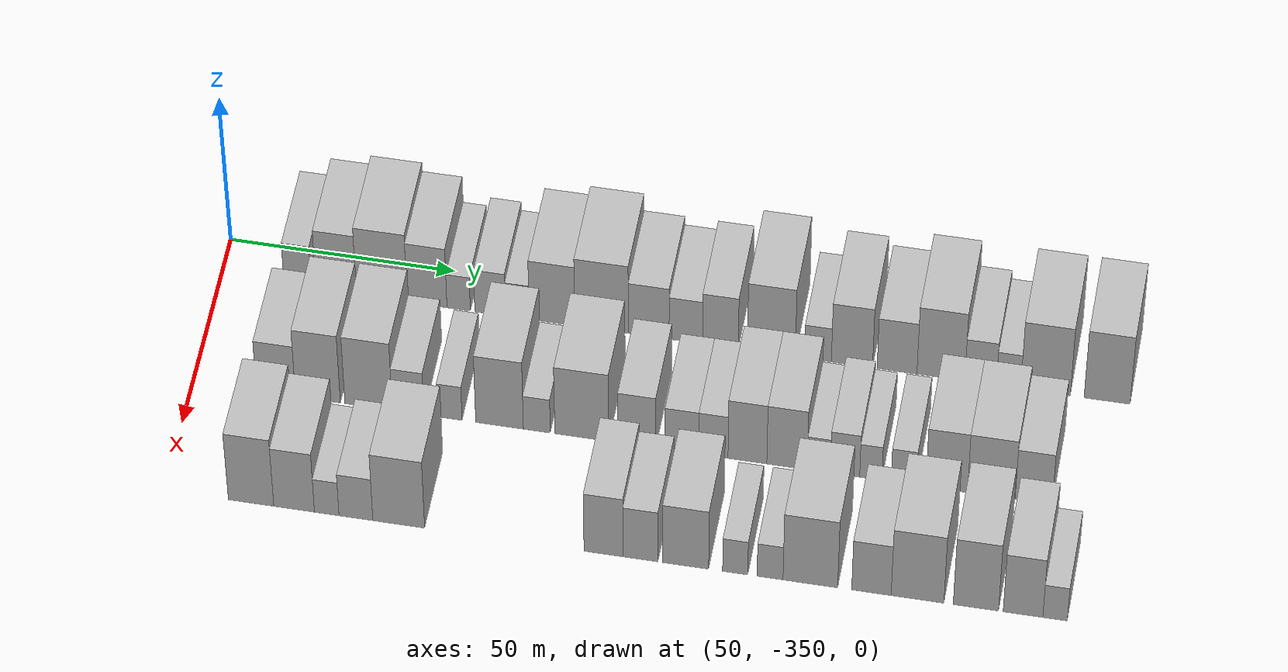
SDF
<sdf version="1.6">
 <world name="default">
  <model name="building_1">
   <static>1</static>
   <pose>50.0000 -332.9522 0 0.000000 0.000000 0.000000</pose>
   <link name="link">
    <pose>0 0 7.50 0 0 0</pose>
    <collision name="collision"><geometry><box><size>20.0000 6.0955 15.0000</size></box></geometry></collision>
    <visual name="visual">
     <cast_shadows>0</cast_shadows>
     <geometry><box><size>20.0000 6.0955 15.0000</size></box></geometry>
     <material>
      <script>
       <uri>model://HANNAS_wall/materials/scripts</uri>
       <uri>model://HANNAS_wall/materials/textures</uri>
       <name>vrc/HANNAS_wall</name>
      </script>
     </material>
    </visual>
   </link>
  </model>
  <model name="building_2">
   <static>1</static>
   <pose>50.0000 -324.4154 0 0.000000 0.000000 0.000000</pose>
   <link name="link">
    <pose>0 0 10.50 0 0 0</pose>
    <collision name="collision"><geometry><box><size>20.0000 8.9783 21.0000</size></box></geometry></collision>
    <visual name="visual">
     <cast_shadows>0</cast_shadows>
     <geometry><box><size>20.0000 8.9783 21.0000</size></box></geometry>
     <material>
      <script>
       <uri>model://HANNAS_wall/materials/scripts</uri>
       <uri>model://HANNAS_wall/materials/textures</uri>
       <name>vrc/HANNAS_wall</name>
      </script>
     </material>
    </visual>
   </link>
  </model>
  <model name="building_3">
   <static>1</static>
   <pose>50.0000 -314.2920 0 0.000000 0.000000 0.000000</pose>
   <link name="link">
    <pose>0 0 12.00 0 0 0</pose>
    <collision name="collision"><geometry><box><size>20.0000 11.2685 24.0000</size></box></geometry></collision>
    <visual name="visual">
     <cast_shadows>0</cast_shadows>
     <geometry><box><size>20.0000 11.2685 24.0000</size></box></geometry>
     <material>
      <script>
       <uri>model://HANNAS_wall/materials/scripts</uri>
       <uri>model://HANNAS_wall/materials/textures</uri>
       <name>vrc/HANNAS_wall</name>
      </script>
     </material>
    </visual>
   </link>
  </model>
  <model name="building_4">
   <static>1</static>
   <pose>50.0000 -304.2534 0 0.000000 0.000000 0.000000</pose>
   <link name="link">
    <pose>0 0 10.50 0 0 0</pose>
    <collision name="collision"><geometry><box><size>20.0000 8.8086 21.0000</size></box></geometry></collision>
    <visual name="visual">
     <cast_shadows>0</cast_shadows>
     <geometry><box><size>20.0000 8.8086 21.0000</size></box></geometry>
     <material>
      <script>
       <uri>model://HANNAS_wall/materials/scripts</uri>
       <uri>model://HANNAS_wall/materials/textures</uri>
       <name>vrc/HANNAS_wall</name>
      </script>
     </material>
    </visual>
   </link>
  </model>
  <model name="building_5">
   <static>1</static>
   <pose>50.0000 -297.2645 0 0.000000 0.000000 0.000000</pose>
   <link name="link">
    <pose>0 0 6.00 0 0 0</pose>
    <collision name="collision"><geometry><box><size>20.0000 5.1691 12.0000</size></box></geometry></collision>
    <visual name="visual">
     <cast_shadows>0</cast_shadows>
     <geometry><box><size>20.0000 5.1691 12.0000</size></box></geometry>
     <material>
      <script>
       <uri>model://HANNAS_wall/materials/scripts</uri>
       <uri>model://HANNAS_wall/materials/textures</uri>
       <name>vrc/HANNAS_wall</name>
      </script>
     </material>
    </visual>
   </link>
  </model>
  <model name="building_6">
   <static>1</static>
   <pose>50.0000 -290.2907 0 0.000000 0.000000 0.000000</pose>
   <link name="link">
    <pose>0 0 7.50 0 0 0</pose>
    <collision name="collision"><geometry><box><size>20.0000 6.7785 15.0000</size></box></geometry></collision>
    <visual name="visual">
     <cast_shadows>0</cast_shadows>
     <geometry><box><size>20.0000 6.7785 15.0000</size></box></geometry>
     <material>
      <script>
       <uri>model://HANNAS_wall/materials/scripts</uri>
       <uri>model://HANNAS_wall/materials/textures</uri>
       <name>vrc/HANNAS_wall</name>
      </script>
     </material>
    </visual>
   </link>
  </model>
  <model name="building_7">
   <static>1</static>
   <pose>50.0000 -284.2733 0 0.000000 0.000000 0.000000</pose>
   <link name="link">
    <pose>0 0 6.00 0 0 0</pose>
    <collision name="collision"><geometry><box><size>20.0000 5.2564 12.0000</size></box></geometry></collision>
    <visual name="visual">
     <cast_shadows>0</cast_shadows>
     <geometry><box><size>20.0000 5.2564 12.0000</size></box></geometry>
     <material>
      <script>
       <uri>model://HANNAS_wall/materials/scripts</uri>
       <uri>model://HANNAS_wall/materials/textures</uri>
       <name>vrc/HANNAS_wall</name>
      </script>
     </material>
    </visual>
   </link>
  </model>
  <model name="building_8">
   <static>1</static>
   <pose>50.0000 -276.6184 0 0.000000 0.000000 0.000000</pose>
   <link name="link">
    <pose>0 0 10.50 0 0 0</pose>
    <collision name="collision"><geometry><box><size>20.0000 10.0532 21.0000</size></box></geometry></collision>
    <visual name="visual">
     <cast_shadows>0</cast_shadows>
     <geometry><box><size>20.0000 10.0532 21.0000</size></box></geometry>
     <material>
      <script>
       <uri>model://HANNAS_wall/materials/scripts</uri>
       <uri>model://HANNAS_wall/materials/textures</uri>
       <name>vrc/HANNAS_wall</name>
      </script>
     </material>
    </visual>
   </link>
  </model>
  <model name="building_9">
   <static>1</static>
   <pose>50.0000 -265.6870 0 0.000000 0.000000 0.000000</pose>
   <link name="link">
    <pose>0 0 12.00 0 0 0</pose>
    <collision name="collision"><geometry><box><size>20.0000 11.8096 24.0000</size></box></geometry></collision>
    <visual name="visual">
     <cast_shadows>0</cast_shadows>
     <geometry><box><size>20.0000 11.8096 24.0000</size></box></geometry>
     <material>
      <script>
       <uri>model://HANNAS_wall/materials/scripts</uri>
       <uri>model://HANNAS_wall/materials/textures</uri>
       <name>vrc/HANNAS_wall</name>
      </script>
     </material>
    </visual>
   </link>
  </model>
  <model name="building_10">
   <static>1</static>
   <pose>50.0000 -255.3043 0 0.000000 0.000000 0.000000</pose>
   <link name="link">
    <pose>0 0 9.00 0 0 0</pose>
    <collision name="collision"><geometry><box><size>20.0000 8.9559 18.0000</size></box></geometry></collision>
    <visual name="visual">
     <cast_shadows>0</cast_shadows>
     <geometry><box><size>20.0000 8.9559 18.0000</size></box></geometry>
     <material>
      <script>
       <uri>model://HANNAS_wall/materials/scripts</uri>
       <uri>model://HANNAS_wall/materials/textures</uri>
       <name>vrc/HANNAS_wall</name>
      </script>
     </material>
    </visual>
   </link>
  </model>
  <model name="building_11">
   <static>1</static>
   <pose>50.0000 -247.1612 0 0.000000 0.000000 0.000000</pose>
   <link name="link">
    <pose>0 0 7.50 0 0 0</pose>
    <collision name="collision"><geometry><box><size>20.0000 7.3303 15.0000</size></box></geometry></collision>
    <visual name="visual">
     <cast_shadows>0</cast_shadows>
     <geometry><box><size>20.0000 7.3303 15.0000</size></box></geometry>
     <material>
      <script>
       <uri>model://HANNAS_wall/materials/scripts</uri>
       <uri>model://HANNAS_wall/materials/textures</uri>
       <name>vrc/HANNAS_wall</name>
      </script>
     </material>
    </visual>
   </link>
  </model>
  <model name="building_12">
   <static>1</static>
   <pose>50.0000 -239.5598 0 0.000000 0.000000 0.000000</pose>
   <link name="link">
    <pose>0 0 9.00 0 0 0</pose>
    <collision name="collision"><geometry><box><size>20.0000 7.8724 18.0000</size></box></geometry></collision>
    <visual name="visual">
     <cast_shadows>0</cast_shadows>
     <geometry><box><size>20.0000 7.8724 18.0000</size></box></geometry>
     <material>
      <script>
       <uri>model://HANNAS_wall/materials/scripts</uri>
       <uri>model://HANNAS_wall/materials/textures</uri>
       <name>vrc/HANNAS_wall</name>
      </script>
     </material>
    </visual>
   </link>
  </model>
  <model name="building_13">
   <static>1</static>
   <pose>50.0000 -228.3800 0 0.000000 0.000000 0.000000</pose>
   <link name="link">
    <pose>0 0 12.00 0 0 0</pose>
    <collision name="collision"><geometry><box><size>20.0000 10.4870 24.0000</size></box></geometry></collision>
    <visual name="visual">
     <cast_shadows>0</cast_shadows>
     <geometry><box><size>20.0000 10.4870 24.0000</size></box></geometry>
     <material>
      <script>
       <uri>model://HANNAS_wall/materials/scripts</uri>
       <uri>model://HANNAS_wall/materials/textures</uri>
       <name>vrc/HANNAS_wall</name>
      </script>
     </material>
    </visual>
   </link>
  </model>
  <model name="building_14">
   <static>1</static>
   <pose>50.0000 -218.1884 0 0.000000 0.000000 0.000000</pose>
   <link name="link">
    <pose>0 0 6.00 0 0 0</pose>
    <collision name="collision"><geometry><box><size>20.0000 5.8963 12.0000</size></box></geometry></collision>
    <visual name="visual">
     <cast_shadows>0</cast_shadows>
     <geometry><box><size>20.0000 5.8963 12.0000</size></box></geometry>
     <material>
      <script>
       <uri>model://HANNAS_wall/materials/scripts</uri>
       <uri>model://HANNAS_wall/materials/textures</uri>
       <name>vrc/HANNAS_wall</name>
      </script>
     </material>
    </visual>
   </link>
  </model>
  <model name="building_15">
   <static>1</static>
   <pose>50.0000 -210.7343 0 0.000000 0.000000 0.000000</pose>
   <link name="link">
    <pose>0 0 10.50 0 0 0</pose>
    <collision name="collision"><geometry><box><size>20.0000 9.0119 21.0000</size></box></geometry></collision>
    <visual name="visual">
     <cast_shadows>0</cast_shadows>
     <geometry><box><size>20.0000 9.0119 21.0000</size></box></geometry>
     <material>
      <script>
       <uri>model://HANNAS_wall/materials/scripts</uri>
       <uri>model://HANNAS_wall/materials/textures</uri>
       <name>vrc/HANNAS_wall</name>
      </script>
     </material>
    </visual>
   </link>
  </model>
  <model name="building_16">
   <static>1</static>
   <pose>50.0000 -200.8816 0 0.000000 0.000000 0.000000</pose>
   <link name="link">
    <pose>0 0 9.00 0 0 0</pose>
    <collision name="collision"><geometry><box><size>20.0000 8.6935 18.0000</size></box></geometry></collision>
    <visual name="visual">
     <cast_shadows>0</cast_shadows>
     <geometry><box><size>20.0000 8.6935 18.0000</size></box></geometry>
     <material>
      <script>
       <uri>model://HANNAS_wall/materials/scripts</uri>
       <uri>model://HANNAS_wall/materials/textures</uri>
       <name>vrc/HANNAS_wall</name>
      </script>
     </material>
    </visual>
   </link>
  </model>
  <model name="building_17">
   <static>1</static>
   <pose>50.0000 -191.3085 0 0.000000 0.000000 0.000000</pose>
   <link name="link">
    <pose>0 0 12.00 0 0 0</pose>
    <collision name="collision"><geometry><box><size>20.0000 10.4528 24.0000</size></box></geometry></collision>
    <visual name="visual">
     <cast_shadows>0</cast_shadows>
     <geometry><box><size>20.0000 10.4528 24.0000</size></box></geometry>
     <material>
      <script>
       <uri>model://HANNAS_wall/materials/scripts</uri>
       <uri>model://HANNAS_wall/materials/textures</uri>
       <name>vrc/HANNAS_wall</name>
      </script>
     </material>
    </visual>
   </link>
  </model>
  <model name="building_18">
   <static>1</static>
   <pose>50.0000 -182.6377 0 0.000000 0.000000 0.000000</pose>
   <link name="link">
    <pose>0 0 7.50 0 0 0</pose>
    <collision name="collision"><geometry><box><size>20.0000 6.8887 15.0000</size></box></geometry></collision>
    <visual name="visual">
     <cast_shadows>0</cast_shadows>
     <geometry><box><size>20.0000 6.8887 15.0000</size></box></geometry>
     <material>
      <script>
       <uri>model://HANNAS_wall/materials/scripts</uri>
       <uri>model://HANNAS_wall/materials/textures</uri>
       <name>vrc/HANNAS_wall</name>
      </script>
     </material>
    </visual>
   </link>
  </model>
  <model name="building_19">
   <static>1</static>
   <pose>50.0000 -176.5488 0 0.000000 0.000000 0.000000</pose>
   <link name="link">
    <pose>0 0 6.00 0 0 0</pose>
    <collision name="collision"><geometry><box><size>20.0000 5.2893 12.0000</size></box></geometry></collision>
    <visual name="visual">
     <cast_shadows>0</cast_shadows>
     <geometry><box><size>20.0000 5.2893 12.0000</size></box></geometry>
     <material>
      <script>
       <uri>model://HANNAS_wall/materials/scripts</uri>
       <uri>model://HANNAS_wall/materials/textures</uri>
       <name>vrc/HANNAS_wall</name>
      </script>
     </material>
    </visual>
   </link>
  </model>
  <model name="building_20">
   <static>1</static>
   <pose>50.0000 -168.5159 0 0.000000 0.000000 0.000000</pose>
   <link name="link">
    <pose>0 0 12.00 0 0 0</pose>
    <collision name="collision"><geometry><box><size>20.0000 10.7764 24.0000</size></box></geometry></collision>
    <visual name="visual">
     <cast_shadows>0</cast_shadows>
     <geometry><box><size>20.0000 10.7764 24.0000</size></box></geometry>
     <material>
      <script>
       <uri>model://HANNAS_wall/materials/scripts</uri>
       <uri>model://HANNAS_wall/materials/textures</uri>
       <name>vrc/HANNAS_wall</name>
      </script>
     </material>
    </visual>
   </link>
  </model>
  <model name="building_21">
   <static>1</static>
   <pose>50.0000 -155.1342 0 0.000000 0.000000 0.000000</pose>
   <link name="link">
    <pose>0 0 12.00 0 0 0</pose>
    <collision name="collision"><geometry><box><size>20.0000 9.9871 24.0000</size></box></geometry></collision>
    <visual name="visual">
     <cast_shadows>0</cast_shadows>
     <geometry><box><size>20.0000 9.9871 24.0000</size></box></geometry>
     <material>
      <script>
       <uri>model://HANNAS_wall/materials/scripts</uri>
       <uri>model://HANNAS_wall/materials/textures</uri>
       <name>vrc/HANNAS_wall</name>
      </script>
     </material>
    </visual>
   </link>
  </model>
  <model name="building_78">
   <static>1</static>
   <pose>79.0000 -331.7164 0 0.000000 0.000000 0.000000</pose>
   <link name="link">
    <pose>0 0 9.00 0 0 0</pose>
    <collision name="collision"><geometry><box><size>20.0000 8.5672 18.0000</size></box></geometry></collision>
    <visual name="visual">
     <cast_shadows>0</cast_shadows>
     <geometry><box><size>20.0000 8.5672 18.0000</size></box></geometry>
     <material>
      <script>
       <uri>model://HANNAS_wall/materials/scripts</uri>
       <uri>model://HANNAS_wall/materials/textures</uri>
       <name>vrc/HANNAS_wall</name>
      </script>
     </material>
    </visual>
   </link>
  </model>
  <model name="building_79">
   <static>1</static>
   <pose>79.0000 -322.5121 0 0.000000 0.000000 0.000000</pose>
   <link name="link">
    <pose>0 0 12.00 0 0 0</pose>
    <collision name="collision"><geometry><box><size>20.0000 9.8414 24.0000</size></box></geometry></collision>
    <visual name="visual">
     <cast_shadows>0</cast_shadows>
     <geometry><box><size>20.0000 9.8414 24.0000</size></box></geometry>
     <material>
      <script>
       <uri>model://HANNAS_wall/materials/scripts</uri>
       <uri>model://HANNAS_wall/materials/textures</uri>
       <name>vrc/HANNAS_wall</name>
      </script>
     </material>
    </visual>
   </link>
  </model>
  <model name="building_80">
   <static>1</static>
   <pose>79.0000 -311.3957 0 0.000000 0.000000 0.000000</pose>
   <link name="link">
    <pose>0 0 12.00 0 0 0</pose>
    <collision name="collision"><geometry><box><size>20.0000 10.3913 24.0000</size></box></geometry></collision>
    <visual name="visual">
     <cast_shadows>0</cast_shadows>
     <geometry><box><size>20.0000 10.3913 24.0000</size></box></geometry>
     <material>
      <script>
       <uri>model://HANNAS_wall/materials/scripts</uri>
       <uri>model://HANNAS_wall/materials/textures</uri>
       <name>vrc/HANNAS_wall</name>
      </script>
     </material>
    </visual>
   </link>
  </model>
  <model name="building_81">
   <static>1</static>
   <pose>79.0000 -302.7373 0 0.000000 0.000000 0.000000</pose>
   <link name="link">
    <pose>0 0 7.50 0 0 0</pose>
    <collision name="collision"><geometry><box><size>20.0000 6.9254 15.0000</size></box></geometry></collision>
    <visual name="visual">
     <cast_shadows>0</cast_shadows>
     <geometry><box><size>20.0000 6.9254 15.0000</size></box></geometry>
     <material>
      <script>
       <uri>model://HANNAS_wall/materials/scripts</uri>
       <uri>model://HANNAS_wall/materials/textures</uri>
       <name>vrc/HANNAS_wall</name>
      </script>
     </material>
    </visual>
   </link>
  </model>
  <model name="building_82">
   <static>1</static>
   <pose>79.0000 -293.6001 0 0.000000 0.000000 0.000000</pose>
   <link name="link">
    <pose>0 0 6.00 0 0 0</pose>
    <collision name="collision"><geometry><box><size>20.0000 5.3490 12.0000</size></box></geometry></collision>
    <visual name="visual">
     <cast_shadows>0</cast_shadows>
     <geometry><box><size>20.0000 5.3490 12.0000</size></box></geometry>
     <material>
      <script>
       <uri>model://HANNAS_wall/materials/scripts</uri>
       <uri>model://HANNAS_wall/materials/textures</uri>
       <name>vrc/HANNAS_wall</name>
      </script>
     </material>
    </visual>
   </link>
  </model>
  <model name="building_83">
   <static>1</static>
   <pose>79.0000 -282.7220 0 0.000000 0.000000 0.000000</pose>
   <link name="link">
    <pose>0 0 12.00 0 0 0</pose>
    <collision name="collision"><geometry><box><size>20.0000 10.4072 24.0000</size></box></geometry></collision>
    <visual name="visual">
     <cast_shadows>0</cast_shadows>
     <geometry><box><size>20.0000 10.4072 24.0000</size></box></geometry>
     <material>
      <script>
       <uri>model://HANNAS_wall/materials/scripts</uri>
       <uri>model://HANNAS_wall/materials/textures</uri>
       <name>vrc/HANNAS_wall</name>
      </script>
     </material>
    </visual>
   </link>
  </model>
  <model name="building_84">
   <static>1</static>
   <pose>79.0000 -274.5836 0 0.000000 0.000000 0.000000</pose>
   <link name="link">
    <pose>0 0 6.00 0 0 0</pose>
    <collision name="collision"><geometry><box><size>20.0000 5.8697 12.0000</size></box></geometry></collision>
    <visual name="visual">
     <cast_shadows>0</cast_shadows>
     <geometry><box><size>20.0000 5.8697 12.0000</size></box></geometry>
     <material>
      <script>
       <uri>model://HANNAS_wall/materials/scripts</uri>
       <uri>model://HANNAS_wall/materials/textures</uri>
       <name>vrc/HANNAS_wall</name>
      </script>
     </material>
    </visual>
   </link>
  </model>
  <model name="building_85">
   <static>1</static>
   <pose>79.0000 -264.7724 0 0.000000 0.000000 0.000000</pose>
   <link name="link">
    <pose>0 0 12.00 0 0 0</pose>
    <collision name="collision"><geometry><box><size>20.0000 11.7528 24.0000</size></box></geometry></collision>
    <visual name="visual">
     <cast_shadows>0</cast_shadows>
     <geometry><box><size>20.0000 11.7528 24.0000</size></box></geometry>
     <material>
      <script>
       <uri>model://HANNAS_wall/materials/scripts</uri>
       <uri>model://HANNAS_wall/materials/textures</uri>
       <name>vrc/HANNAS_wall</name>
      </script>
     </material>
    </visual>
   </link>
  </model>
  <model name="building_86">
   <static>1</static>
   <pose>79.0000 -252.7841 0 0.000000 0.000000 0.000000</pose>
   <link name="link">
    <pose>0 0 9.00 0 0 0</pose>
    <collision name="collision"><geometry><box><size>20.0000 8.2237 18.0000</size></box></geometry></collision>
    <visual name="visual">
     <cast_shadows>0</cast_shadows>
     <geometry><box><size>20.0000 8.2237 18.0000</size></box></geometry>
     <material>
      <script>
       <uri>model://HANNAS_wall/materials/scripts</uri>
       <uri>model://HANNAS_wall/materials/textures</uri>
       <name>vrc/HANNAS_wall</name>
      </script>
     </material>
    </visual>
   </link>
  </model>
  <model name="building_87">
   <static>1</static>
   <pose>79.0000 -243.0189 0 0.000000 0.000000 0.000000</pose>
   <link name="link">
    <pose>0 0 7.50 0 0 0</pose>
    <collision name="collision"><geometry><box><size>20.0000 7.3068 15.0000</size></box></geometry></collision>
    <visual name="visual">
     <cast_shadows>0</cast_shadows>
     <geometry><box><size>20.0000 7.3068 15.0000</size></box></geometry>
     <material>
      <script>
       <uri>model://HANNAS_wall/materials/scripts</uri>
       <uri>model://HANNAS_wall/materials/textures</uri>
       <name>vrc/HANNAS_wall</name>
      </script>
     </material>
    </visual>
   </link>
  </model>
  <model name="building_88">
   <static>1</static>
   <pose>79.0000 -236.1746 0 0.000000 0.000000 0.000000</pose>
   <link name="link">
    <pose>0 0 7.50 0 0 0</pose>
    <collision name="collision"><geometry><box><size>20.0000 6.3819 15.0000</size></box></geometry></collision>
    <visual name="visual">
     <cast_shadows>0</cast_shadows>
     <geometry><box><size>20.0000 6.3819 15.0000</size></box></geometry>
     <material>
      <script>
       <uri>model://HANNAS_wall/materials/scripts</uri>
       <uri>model://HANNAS_wall/materials/textures</uri>
       <name>vrc/HANNAS_wall</name>
      </script>
     </material>
    </visual>
   </link>
  </model>
  <model name="building_89">
   <static>1</static>
   <pose>79.0000 -228.7768 0 0.000000 0.000000 0.000000</pose>
   <link name="link">
    <pose>0 0 10.50 0 0 0</pose>
    <collision name="collision"><geometry><box><size>20.0000 8.4136 21.0000</size></box></geometry></collision>
    <visual name="visual">
     <cast_shadows>0</cast_shadows>
     <geometry><box><size>20.0000 8.4136 21.0000</size></box></geometry>
     <material>
      <script>
       <uri>model://HANNAS_wall/materials/scripts</uri>
       <uri>model://HANNAS_wall/materials/textures</uri>
       <name>vrc/HANNAS_wall</name>
      </script>
     </material>
    </visual>
   </link>
  </model>
  <model name="building_90">
   <static>1</static>
   <pose>79.0000 -220.2091 0 0.000000 0.000000 0.000000</pose>
   <link name="link">
    <pose>0 0 10.50 0 0 0</pose>
    <collision name="collision"><geometry><box><size>20.0000 8.7219 21.0000</size></box></geometry></collision>
    <visual name="visual">
     <cast_shadows>0</cast_shadows>
     <geometry><box><size>20.0000 8.7219 21.0000</size></box></geometry>
     <material>
      <script>
       <uri>model://HANNAS_wall/materials/scripts</uri>
       <uri>model://HANNAS_wall/materials/textures</uri>
       <name>vrc/HANNAS_wall</name>
      </script>
     </material>
    </visual>
   </link>
  </model>
  <model name="building_91">
   <static>1</static>
   <pose>79.0000 -213.3384 0 0.000000 0.000000 0.000000</pose>
   <link name="link">
    <pose>0 0 6.00 0 0 0</pose>
    <collision name="collision"><geometry><box><size>20.0000 5.0196 12.0000</size></box></geometry></collision>
    <visual name="visual">
     <cast_shadows>0</cast_shadows>
     <geometry><box><size>20.0000 5.0196 12.0000</size></box></geometry>
     <material>
      <script>
       <uri>model://HANNAS_wall/materials/scripts</uri>
       <uri>model://HANNAS_wall/materials/textures</uri>
       <name>vrc/HANNAS_wall</name>
      </script>
     </material>
    </visual>
   </link>
  </model>
  <model name="building_92">
   <static>1</static>
   <pose>79.0000 -207.6542 0 0.000000 0.000000 0.000000</pose>
   <link name="link">
    <pose>0 0 7.50 0 0 0</pose>
    <collision name="collision"><geometry><box><size>20.0000 6.3489 15.0000</size></box></geometry></collision>
    <visual name="visual">
     <cast_shadows>0</cast_shadows>
     <geometry><box><size>20.0000 6.3489 15.0000</size></box></geometry>
     <material>
      <script>
       <uri>model://HANNAS_wall/materials/scripts</uri>
       <uri>model://HANNAS_wall/materials/textures</uri>
       <name>vrc/HANNAS_wall</name>
      </script>
     </material>
    </visual>
   </link>
  </model>
  <model name="building_93">
   <static>1</static>
   <pose>79.0000 -202.0791 0 0.000000 0.000000 0.000000</pose>
   <link name="link">
    <pose>0 0 6.00 0 0 0</pose>
    <collision name="collision"><geometry><box><size>20.0000 4.8012 12.0000</size></box></geometry></collision>
    <visual name="visual">
     <cast_shadows>0</cast_shadows>
     <geometry><box><size>20.0000 4.8012 12.0000</size></box></geometry>
     <material>
      <script>
       <uri>model://HANNAS_wall/materials/scripts</uri>
       <uri>model://HANNAS_wall/materials/textures</uri>
       <name>vrc/HANNAS_wall</name>
      </script>
     </material>
    </visual>
   </link>
  </model>
  <model name="building_94">
   <static>1</static>
   <pose>79.0000 -194.9390 0 0.000000 0.000000 0.000000</pose>
   <link name="link">
    <pose>0 0 6.00 0 0 0</pose>
    <collision name="collision"><geometry><box><size>20.0000 5.4791 12.0000</size></box></geometry></collision>
    <visual name="visual">
     <cast_shadows>0</cast_shadows>
     <geometry><box><size>20.0000 5.4791 12.0000</size></box></geometry>
     <material>
      <script>
       <uri>model://HANNAS_wall/materials/scripts</uri>
       <uri>model://HANNAS_wall/materials/textures</uri>
       <name>vrc/HANNAS_wall</name>
      </script>
     </material>
    </visual>
   </link>
  </model>
  <model name="building_95">
   <static>1</static>
   <pose>79.0000 -185.7063 0 0.000000 0.000000 0.000000</pose>
   <link name="link">
    <pose>0 0 10.50 0 0 0</pose>
    <collision name="collision"><geometry><box><size>20.0000 8.9863 21.0000</size></box></geometry></collision>
    <visual name="visual">
     <cast_shadows>0</cast_shadows>
     <geometry><box><size>20.0000 8.9863 21.0000</size></box></geometry>
     <material>
      <script>
       <uri>model://HANNAS_wall/materials/scripts</uri>
       <uri>model://HANNAS_wall/materials/textures</uri>
       <name>vrc/HANNAS_wall</name>
      </script>
     </material>
    </visual>
   </link>
  </model>
  <model name="building_96">
   <static>1</static>
   <pose>79.0000 -176.0860 0 0.000000 0.000000 0.000000</pose>
   <link name="link">
    <pose>0 0 10.50 0 0 0</pose>
    <collision name="collision"><geometry><box><size>20.0000 10.2544 21.0000</size></box></geometry></collision>
    <visual name="visual">
     <cast_shadows>0</cast_shadows>
     <geometry><box><size>20.0000 10.2544 21.0000</size></box></geometry>
     <material>
      <script>
       <uri>model://HANNAS_wall/materials/scripts</uri>
       <uri>model://HANNAS_wall/materials/textures</uri>
       <name>vrc/HANNAS_wall</name>
      </script>
     </material>
    </visual>
   </link>
  </model>
  <model name="building_97">
   <static>1</static>
   <pose>79.0000 -166.9662 0 0.000000 0.000000 0.000000</pose>
   <link name="link">
    <pose>0 0 9.00 0 0 0</pose>
    <collision name="collision"><geometry><box><size>20.0000 7.9852 18.0000</size></box></geometry></collision>
    <visual name="visual">
     <cast_shadows>0</cast_shadows>
     <geometry><box><size>20.0000 7.9852 18.0000</size></box></geometry>
     <material>
      <script>
       <uri>model://HANNAS_wall/materials/scripts</uri>
       <uri>model://HANNAS_wall/materials/textures</uri>
       <name>vrc/HANNAS_wall</name>
      </script>
     </material>
    </visual>
   </link>
  </model>
  <model name="building_156">
   <static>1</static>
   <pose>108.0000 -331.0668 0 0.000000 0.000000 0.000000</pose>
   <link name="link">
    <pose>0 0 12.00 0 0 0</pose>
    <collision name="collision"><geometry><box><size>20.0000 9.8664 24.0000</size></box></geometry></collision>
    <visual name="visual">
     <cast_shadows>0</cast_shadows>
     <geometry><box><size>20.0000 9.8664 24.0000</size></box></geometry>
     <material>
      <script>
       <uri>model://HANNAS_wall/materials/scripts</uri>
       <uri>model://HANNAS_wall/materials/textures</uri>
       <name>vrc/HANNAS_wall</name>
      </script>
     </material>
    </visual>
   </link>
  </model>
  <model name="building_157">
   <static>1</static>
   <pose>108.0000 -321.7162 0 0.000000 0.000000 0.000000</pose>
   <link name="link">
    <pose>0 0 10.50 0 0 0</pose>
    <collision name="collision"><geometry><box><size>20.0000 8.8348 21.0000</size></box></geometry></collision>
    <visual name="visual">
     <cast_shadows>0</cast_shadows>
     <geometry><box><size>20.0000 8.8348 21.0000</size></box></geometry>
     <material>
      <script>
       <uri>model://HANNAS_wall/materials/scripts</uri>
       <uri>model://HANNAS_wall/materials/textures</uri>
       <name>vrc/HANNAS_wall</name>
      </script>
     </material>
    </visual>
   </link>
  </model>
  <model name="building_158">
   <static>1</static>
   <pose>108.0000 -314.6377 0 0.000000 0.000000 0.000000</pose>
   <link name="link">
    <pose>0 0 6.00 0 0 0</pose>
    <collision name="collision"><geometry><box><size>20.0000 5.3222 12.0000</size></box></geometry></collision>
    <visual name="visual">
     <cast_shadows>0</cast_shadows>
     <geometry><box><size>20.0000 5.3222 12.0000</size></box></geometry>
     <material>
      <script>
       <uri>model://HANNAS_wall/materials/scripts</uri>
       <uri>model://HANNAS_wall/materials/textures</uri>
       <name>vrc/HANNAS_wall</name>
      </script>
     </material>
    </visual>
   </link>
  </model>
  <model name="building_159">
   <static>1</static>
   <pose>108.0000 -308.3109 0 0.000000 0.000000 0.000000</pose>
   <link name="link">
    <pose>0 0 7.50 0 0 0</pose>
    <collision name="collision"><geometry><box><size>20.0000 7.3315 15.0000</size></box></geometry></collision>
    <visual name="visual">
     <cast_shadows>0</cast_shadows>
     <geometry><box><size>20.0000 7.3315 15.0000</size></box></geometry>
     <material>
      <script>
       <uri>model://HANNAS_wall/materials/scripts</uri>
       <uri>model://HANNAS_wall/materials/textures</uri>
       <name>vrc/HANNAS_wall</name>
      </script>
     </material>
    </visual>
   </link>
  </model>
  <model name="building_160">
   <static>1</static>
   <pose>108.0000 -299.0339 0 0.000000 0.000000 0.000000</pose>
   <link name="link">
    <pose>0 0 12.00 0 0 0</pose>
    <collision name="collision"><geometry><box><size>20.0000 11.2224 24.0000</size></box></geometry></collision>
    <visual name="visual">
     <cast_shadows>0</cast_shadows>
     <geometry><box><size>20.0000 11.2224 24.0000</size></box></geometry>
     <material>
      <script>
       <uri>model://HANNAS_wall/materials/scripts</uri>
       <uri>model://HANNAS_wall/materials/textures</uri>
       <name>vrc/HANNAS_wall</name>
      </script>
     </material>
    </visual>
   </link>
  </model>
  <model name="building_161">
   <static>1</static>
   <pose>108.0000 -254.8062 0 0.000000 0.000000 0.000000</pose>
   <link name="link">
    <pose>0 0 10.50 0 0 0</pose>
    <collision name="collision"><geometry><box><size>20.0000 8.4110 21.0000</size></box></geometry></collision>
    <visual name="visual">
     <cast_shadows>0</cast_shadows>
     <geometry><box><size>20.0000 8.4110 21.0000</size></box></geometry>
     <material>
      <script>
       <uri>model://HANNAS_wall/materials/scripts</uri>
       <uri>model://HANNAS_wall/materials/textures</uri>
       <name>vrc/HANNAS_wall</name>
      </script>
     </material>
    </visual>
   </link>
  </model>
  <model name="building_162">
   <static>1</static>
   <pose>108.0000 -246.8581 0 0.000000 0.000000 0.000000</pose>
   <link name="link">
    <pose>0 0 9.00 0 0 0</pose>
    <collision name="collision"><geometry><box><size>20.0000 7.4851 18.0000</size></box></geometry></collision>
    <visual name="visual">
     <cast_shadows>0</cast_shadows>
     <geometry><box><size>20.0000 7.4851 18.0000</size></box></geometry>
     <material>
      <script>
       <uri>model://HANNAS_wall/materials/scripts</uri>
       <uri>model://HANNAS_wall/materials/textures</uri>
       <name>vrc/HANNAS_wall</name>
      </script>
     </material>
    </visual>
   </link>
  </model>
  <model name="building_163">
   <static>1</static>
   <pose>108.0000 -237.1754 0 0.000000 0.000000 0.000000</pose>
   <link name="link">
    <pose>0 0 10.50 0 0 0</pose>
    <collision name="collision"><geometry><box><size>20.0000 9.8804 21.0000</size></box></geometry></collision>
    <visual name="visual">
     <cast_shadows>0</cast_shadows>
     <geometry><box><size>20.0000 9.8804 21.0000</size></box></geometry>
     <material>
      <script>
       <uri>model://HANNAS_wall/materials/scripts</uri>
       <uri>model://HANNAS_wall/materials/textures</uri>
       <name>vrc/HANNAS_wall</name>
      </script>
     </material>
    </visual>
   </link>
  </model>
  <model name="building_164">
   <static>1</static>
   <pose>108.0000 -226.5336 0 0.000000 0.000000 0.000000</pose>
   <link name="link">
    <pose>0 0 6.00 0 0 0</pose>
    <collision name="collision"><geometry><box><size>20.0000 5.4032 12.0000</size></box></geometry></collision>
    <visual name="visual">
     <cast_shadows>0</cast_shadows>
     <geometry><box><size>20.0000 5.4032 12.0000</size></box></geometry>
     <material>
      <script>
       <uri>model://HANNAS_wall/materials/scripts</uri>
       <uri>model://HANNAS_wall/materials/textures</uri>
       <name>vrc/HANNAS_wall</name>
      </script>
     </material>
    </visual>
   </link>
  </model>
  <model name="building_165">
   <static>1</static>
   <pose>108.0000 -219.0638 0 0.000000 0.000000 0.000000</pose>
   <link name="link">
    <pose>0 0 6.00 0 0 0</pose>
    <collision name="collision"><geometry><box><size>20.0000 5.5363 12.0000</size></box></geometry></collision>
    <visual name="visual">
     <cast_shadows>0</cast_shadows>
     <geometry><box><size>20.0000 5.5363 12.0000</size></box></geometry>
     <material>
      <script>
       <uri>model://HANNAS_wall/materials/scripts</uri>
       <uri>model://HANNAS_wall/materials/textures</uri>
       <name>vrc/HANNAS_wall</name>
      </script>
     </material>
    </visual>
   </link>
  </model>
  <model name="building_166">
   <static>1</static>
   <pose>108.0000 -210.4479 0 0.000000 0.000000 0.000000</pose>
   <link name="link">
    <pose>0 0 12.00 0 0 0</pose>
    <collision name="collision"><geometry><box><size>20.0000 11.6954 24.0000</size></box></geometry></collision>
    <visual name="visual">
     <cast_shadows>0</cast_shadows>
     <geometry><box><size>20.0000 11.6954 24.0000</size></box></geometry>
     <material>
      <script>
       <uri>model://HANNAS_wall/materials/scripts</uri>
       <uri>model://HANNAS_wall/materials/textures</uri>
       <name>vrc/HANNAS_wall</name>
      </script>
     </material>
    </visual>
   </link>
  </model>
  <model name="building_167">
   <static>1</static>
   <pose>108.0000 -197.3951 0 0.000000 0.000000 0.000000</pose>
   <link name="link">
    <pose>0 0 9.00 0 0 0</pose>
    <collision name="collision"><geometry><box><size>20.0000 8.4104 18.0000</size></box></geometry></collision>
    <visual name="visual">
     <cast_shadows>0</cast_shadows>
     <geometry><box><size>20.0000 8.4104 18.0000</size></box></geometry>
     <material>
      <script>
       <uri>model://HANNAS_wall/materials/scripts</uri>
       <uri>model://HANNAS_wall/materials/textures</uri>
       <name>vrc/HANNAS_wall</name>
      </script>
     </material>
    </visual>
   </link>
  </model>
  <model name="building_168">
   <static>1</static>
   <pose>108.0000 -187.5683 0 0.000000 0.000000 0.000000</pose>
   <link name="link">
    <pose>0 0 12.00 0 0 0</pose>
    <collision name="collision"><geometry><box><size>20.0000 11.2432 24.0000</size></box></geometry></collision>
    <visual name="visual">
     <cast_shadows>0</cast_shadows>
     <geometry><box><size>20.0000 11.2432 24.0000</size></box></geometry>
     <material>
      <script>
       <uri>model://HANNAS_wall/materials/scripts</uri>
       <uri>model://HANNAS_wall/materials/textures</uri>
       <name>vrc/HANNAS_wall</name>
      </script>
     </material>
    </visual>
   </link>
  </model>
  <model name="building_169">
   <static>1</static>
   <pose>108.0000 -175.1316 0 0.000000 0.000000 0.000000</pose>
   <link name="link">
    <pose>0 0 12.00 0 0 0</pose>
    <collision name="collision"><geometry><box><size>20.0000 9.6302 24.0000</size></box></geometry></collision>
    <visual name="visual">
     <cast_shadows>0</cast_shadows>
     <geometry><box><size>20.0000 9.6302 24.0000</size></box></geometry>
     <material>
      <script>
       <uri>model://HANNAS_wall/materials/scripts</uri>
       <uri>model://HANNAS_wall/materials/textures</uri>
       <name>vrc/HANNAS_wall</name>
      </script>
     </material>
    </visual>
   </link>
  </model>
  <model name="building_170">
   <static>1</static>
   <pose>108.0000 -165.1072 0 0.000000 0.000000 0.000000</pose>
   <link name="link">
    <pose>0 0 10.50 0 0 0</pose>
    <collision name="collision"><geometry><box><size>20.0000 8.4186 21.0000</size></box></geometry></collision>
    <visual name="visual">
     <cast_shadows>0</cast_shadows>
     <geometry><box><size>20.0000 8.4186 21.0000</size></box></geometry>
     <material>
      <script>
       <uri>model://HANNAS_wall/materials/scripts</uri>
       <uri>model://HANNAS_wall/materials/textures</uri>
       <name>vrc/HANNAS_wall</name>
      </script>
     </material>
    </visual>
   </link>
  </model>
  <model name="building_171">
   <static>1</static>
   <pose>108.0000 -158.2995 0 0.000000 0.000000 0.000000</pose>
   <link name="link">
    <pose>0 0 6.00 0 0 0</pose>
    <collision name="collision"><geometry><box><size>20.0000 5.1968 12.0000</size></box></geometry></collision>
    <visual name="visual">
     <cast_shadows>0</cast_shadows>
     <geometry><box><size>20.0000 5.1968 12.0000</size></box></geometry>
     <material>
      <script>
       <uri>model://HANNAS_wall/materials/scripts</uri>
       <uri>model://HANNAS_wall/materials/textures</uri>
       <name>vrc/HANNAS_wall</name>
      </script>
     </material>
    </visual>
   </link>
  </model>
 </world>
</sdf>
